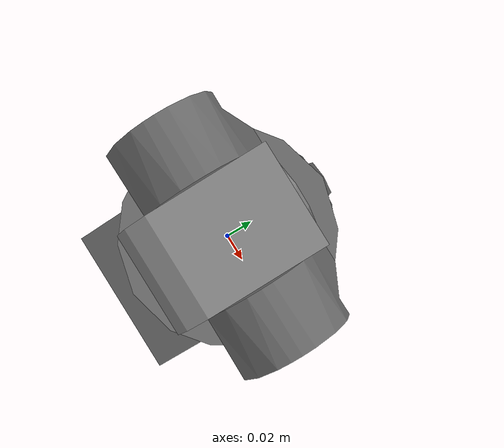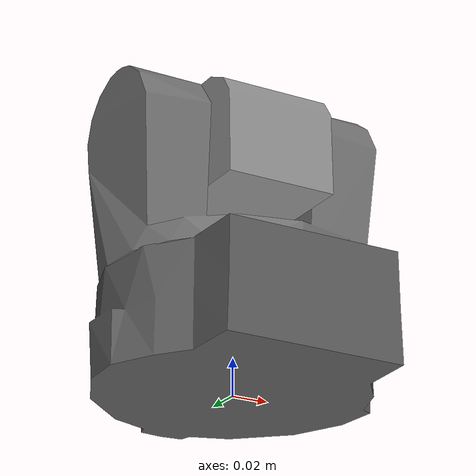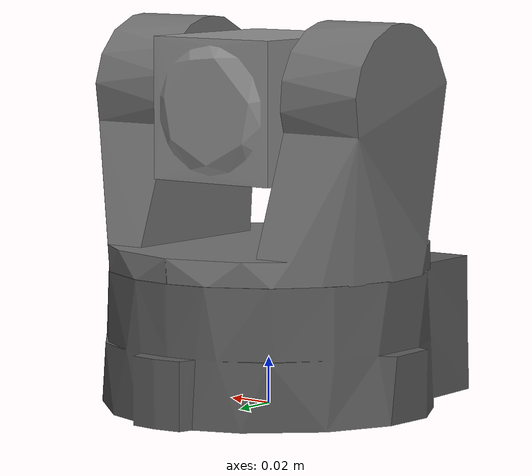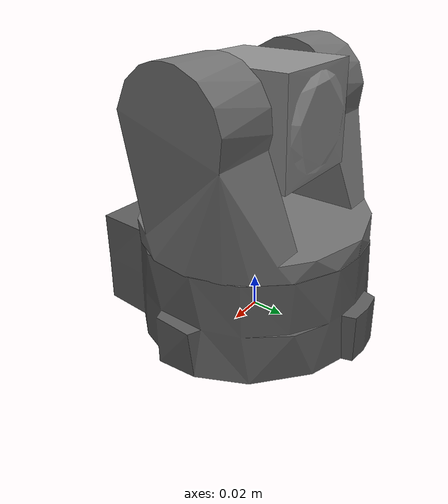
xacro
<?xml version="1.0"?>
<robot xmlns:xacro="http://www.ros.org/wiki/xacro" name="axis_214_PTZ">
    <!-- This is a virtual link which serves as the fixed world link. -->
    <link name="axis_origin" />
    <joint name="axis_origin_j" type="fixed">
        <parent link="axis_origin"/>
        <child link="axis_stand"/>
        <origin rpy="0 0 0" xyz="0 0 0"/>
    </joint>

    <!-- INCLUDES -->
    <xacro:include filename="$(find axis_camera)/urdf/axis_214_PTZ.urdf" />
</robot>

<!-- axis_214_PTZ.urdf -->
<!-- Axis 214 PTZ camera model. Contains both a simple visual model and a primitive-shape-only collision model. -->
<root>
  <link name="axis_stand">
    <visual>
      <origin rpy="0 0 0" xyz="0 0 0"/>
      <geometry>
        <mesh filename="package://axis_camera/meshes/stand.dae" scale="1.0 1.0 1.0"/>
      </geometry>
    </visual>
    <collision>
      <origin rpy="0 0 0" xyz="0 0 0.0295"/>
      <geometry>
        <cylinder radius="0.077" length="0.059"/>
      </geometry>
    </collision>
    <collision>
      <origin rpy="0 0 0" xyz="0 -0.063 0.0295"/>
      <geometry>
        <box size="0.098 0.035 0.059"/>
      </geometry>
    </collision>
  </link>

  <link name="axis_pan_head">
    <visual>
      <origin rpy="0 0 0" xyz="0 0 0"/>
      <geometry>
        <mesh filename="package://axis_camera/meshes/pan_head.dae" scale="1.0 1.0 1.0"/>
      </geometry>
    </visual>
    <collision>
      <origin rpy="0 0 0" xyz="0 0 0.0055"/>
      <geometry>
        <cylinder radius="0.069" length="0.011"/>
      </geometry>
    </collision>
    <collision>
      <origin rpy="0 1.5708 0" xyz="0 0 0.073"/>
      <geometry>
        <cylinder radius="0.033" length="0.14"/>
      </geometry>
    </collision>
    <collision>
      <origin rpy="0 0 0" xyz="0.05 0.008 0.03"/>
      <geometry>
        <box size="0.045 0.075 0.06"/>
      </geometry>
    </collision>
    <collision>
      <origin rpy="0 0 0" xyz="-0.05 0.008 0.03"/>
      <geometry>
        <box size="0.045 0.075 0.06"/>
      </geometry>
    </collision>
  </link>
  <joint name="axis_pan_j" type="revolute">
    <parent link="axis_stand"/>
    <child link="axis_pan_head"/>
    <origin rpy="0 0 0" xyz="0 0 0.059"/>
    <axis xyz="0 0 1"/>
    <dynamics damping="10000000"/>
    <limit effort="0" lower="-2.9671" upper="2.9671" velocity="4"/>
  </joint>

  <link name="axis_tilt_head">
    <visual>
      <origin rpy="0 0 0" xyz="0 0 0"/>
      <geometry>
        <mesh filename="package://axis_camera/meshes/tilt_head.dae" scale="1.0 1.0 1.0"/>
      </geometry>
    </visual>
    <collision>
      <origin rpy="0 0 0" xyz="0 -0.003 0"/>
      <geometry>
        <box size="0.062 0.095 0.062"/>
      </geometry>
    </collision>
  </link>
  <joint name="axis_tilt_j" type="revolute">
    <parent link="axis_pan_head"/>
    <child link="axis_tilt_head"/>
    <origin rpy="0 0 0" xyz="0 0 0.0687"/>
    <axis xyz="1 0 0"/>
    <dynamics damping="10000000"/>
    <limit effort="0" lower="-0.5236" upper="1.5708" velocity="4"/>
  </joint>
</root>
